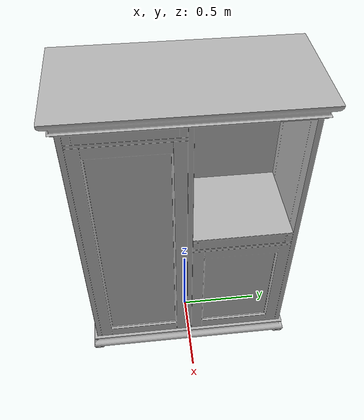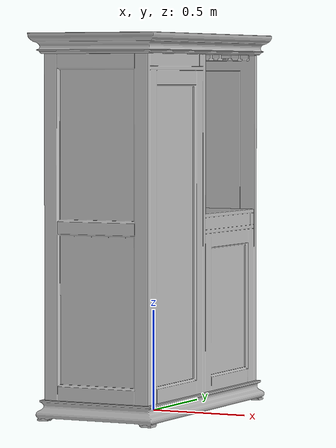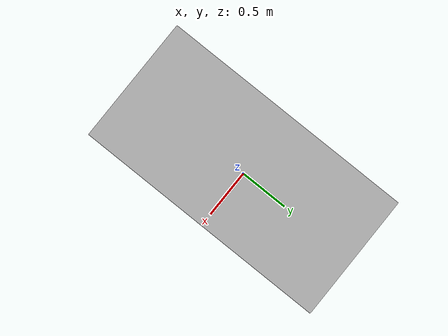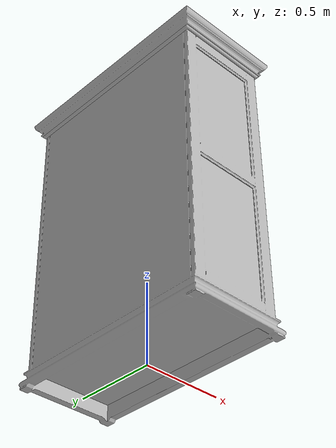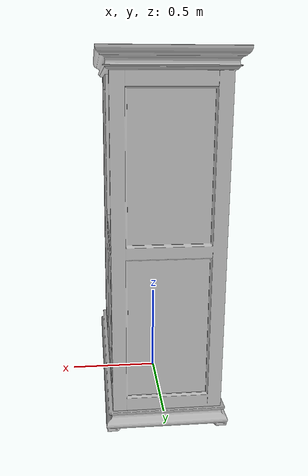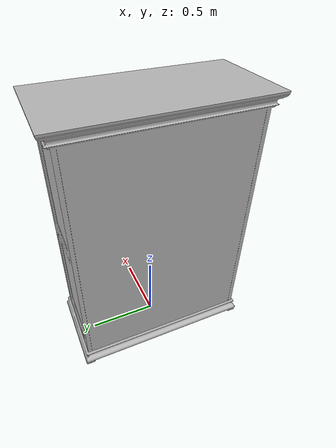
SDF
<?xml version='1.0'?>
<sdf version='1.4'>
  <model name='528'>
    <pose>0 0 0 0 0 0</pose>
    <static>true</static>
    <link name='link'>
      <collision name='collision'>
        <pose>0 0 0 0 0 0</pose>
        <geometry>
          <box>
            <size>0.678654 1.36865 2</size>
          </box>
        </geometry>
      </collision>
      <visual name='visual'>
        <pose>0 0 0 0 0 0</pose>
        <geometry>
          <mesh><uri>model://528/528.dae</uri></mesh>
        </geometry>
      </visual>
    </link>
  </model>
</sdf>
